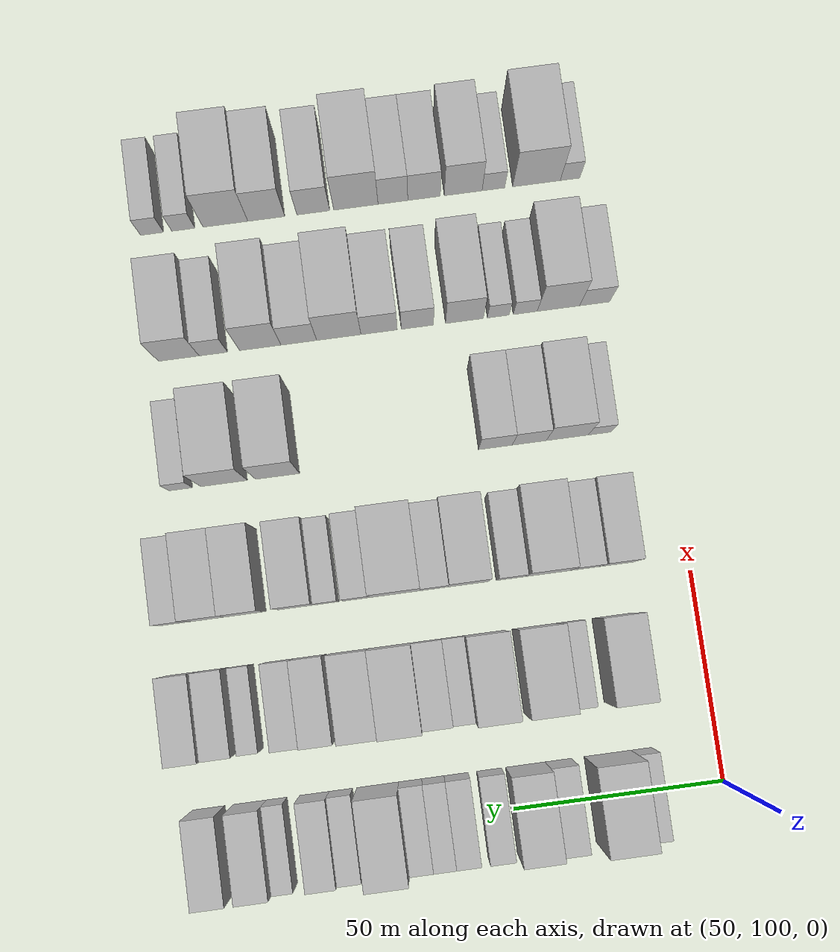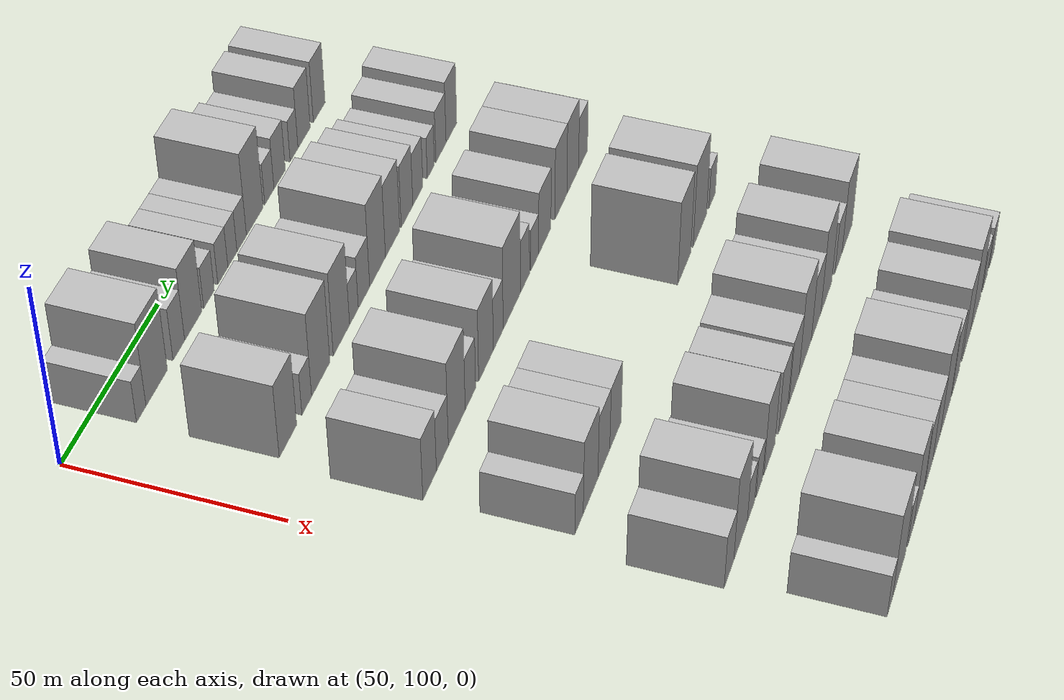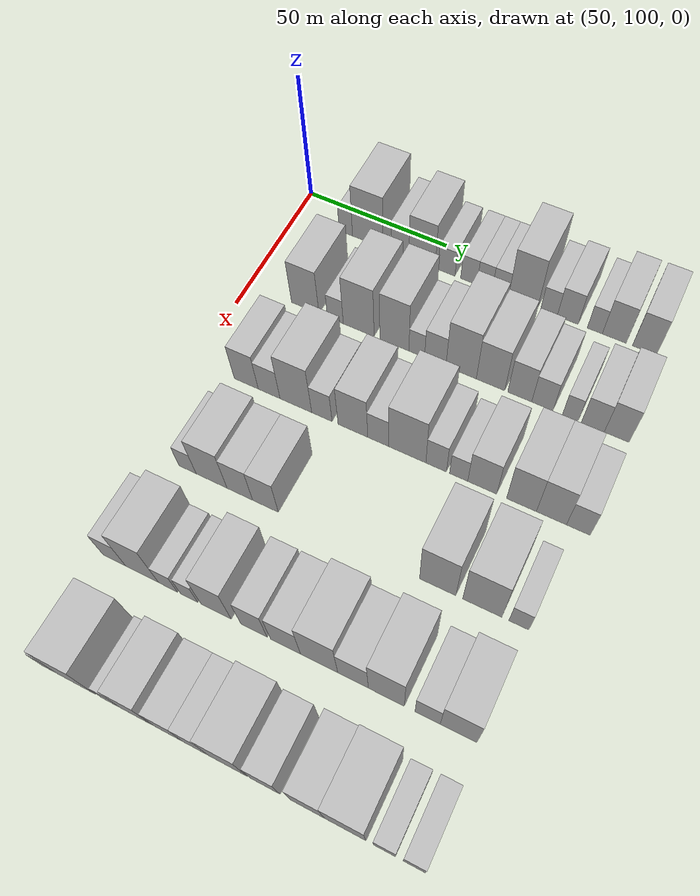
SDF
<sdf version="1.6">
 <world name="default">
  <model name="building_75">
   <static>1</static>
   <pose>50.0000 118.1994 0 0.000000 0.000000 0.000000</pose>
   <link name="link">
    <pose>0 0 6.00 0 0 0</pose>
    <collision name="collision"><geometry><box><size>20.0000 4.9392 12.0000</size></box></geometry></collision>
    <visual name="visual">
     <cast_shadows>0</cast_shadows>
     <geometry><box><size>20.0000 4.9392 12.0000</size></box></geometry>
     <material>
      <script>
       <uri>model://HANNAS_wall/materials/scripts</uri>
       <uri>model://HANNAS_wall/materials/textures</uri>
       <name>vrc/HANNAS_wall</name>
      </script>
     </material>
    </visual>
   </link>
  </model>
  <model name="building_76">
   <static>1</static>
   <pose>50.0000 126.2864 0 0.000000 0.000000 0.000000</pose>
   <link name="link">
    <pose>0 0 12.00 0 0 0</pose>
    <collision name="collision"><geometry><box><size>20.0000 11.2349 24.0000</size></box></geometry></collision>
    <visual name="visual">
     <cast_shadows>0</cast_shadows>
     <geometry><box><size>20.0000 11.2349 24.0000</size></box></geometry>
     <material>
      <script>
       <uri>model://HANNAS_wall/materials/scripts</uri>
       <uri>model://HANNAS_wall/materials/textures</uri>
       <name>vrc/HANNAS_wall</name>
      </script>
     </material>
    </visual>
   </link>
  </model>
  <model name="building_77">
   <static>1</static>
   <pose>50.0000 138.0626 0 0.000000 0.000000 0.000000</pose>
   <link name="link">
    <pose>0 0 7.50 0 0 0</pose>
    <collision name="collision"><geometry><box><size>20.0000 6.3176 15.0000</size></box></geometry></collision>
    <visual name="visual">
     <cast_shadows>0</cast_shadows>
     <geometry><box><size>20.0000 6.3176 15.0000</size></box></geometry>
     <material>
      <script>
       <uri>model://HANNAS_wall/materials/scripts</uri>
       <uri>model://HANNAS_wall/materials/textures</uri>
       <name>vrc/HANNAS_wall</name>
      </script>
     </material>
    </visual>
   </link>
  </model>
  <model name="building_78">
   <static>1</static>
   <pose>50.0000 145.9544 0 0.000000 0.000000 0.000000</pose>
   <link name="link">
    <pose>0 0 10.50 0 0 0</pose>
    <collision name="collision"><geometry><box><size>20.0000 9.4658 21.0000</size></box></geometry></collision>
    <visual name="visual">
     <cast_shadows>0</cast_shadows>
     <geometry><box><size>20.0000 9.4658 21.0000</size></box></geometry>
     <material>
      <script>
       <uri>model://HANNAS_wall/materials/scripts</uri>
       <uri>model://HANNAS_wall/materials/textures</uri>
       <name>vrc/HANNAS_wall</name>
      </script>
     </material>
    </visual>
   </link>
  </model>
  <model name="building_79">
   <static>1</static>
   <pose>50.0000 154.6687 0 0.000000 0.000000 0.000000</pose>
   <link name="link">
    <pose>0 0 6.00 0 0 0</pose>
    <collision name="collision"><geometry><box><size>20.0000 5.9629 12.0000</size></box></geometry></collision>
    <visual name="visual">
     <cast_shadows>0</cast_shadows>
     <geometry><box><size>20.0000 5.9629 12.0000</size></box></geometry>
     <material>
      <script>
       <uri>model://HANNAS_wall/materials/scripts</uri>
       <uri>model://HANNAS_wall/materials/textures</uri>
       <name>vrc/HANNAS_wall</name>
      </script>
     </material>
    </visual>
   </link>
  </model>
  <model name="building_80">
   <static>1</static>
   <pose>50.0000 162.5306 0 0.000000 0.000000 0.000000</pose>
   <link name="link">
    <pose>0 0 6.00 0 0 0</pose>
    <collision name="collision"><geometry><box><size>20.0000 5.7607 12.0000</size></box></geometry></collision>
    <visual name="visual">
     <cast_shadows>0</cast_shadows>
     <geometry><box><size>20.0000 5.7607 12.0000</size></box></geometry>
     <material>
      <script>
       <uri>model://HANNAS_wall/materials/scripts</uri>
       <uri>model://HANNAS_wall/materials/textures</uri>
       <name>vrc/HANNAS_wall</name>
      </script>
     </material>
    </visual>
   </link>
  </model>
  <model name="building_81">
   <static>1</static>
   <pose>50.0000 168.0531 0 0.000000 0.000000 0.000000</pose>
   <link name="link">
    <pose>0 0 6.00 0 0 0</pose>
    <collision name="collision"><geometry><box><size>20.0000 5.2844 12.0000</size></box></geometry></collision>
    <visual name="visual">
     <cast_shadows>0</cast_shadows>
     <geometry><box><size>20.0000 5.2844 12.0000</size></box></geometry>
     <material>
      <script>
       <uri>model://HANNAS_wall/materials/scripts</uri>
       <uri>model://HANNAS_wall/materials/textures</uri>
       <name>vrc/HANNAS_wall</name>
      </script>
     </material>
    </visual>
   </link>
  </model>
  <model name="building_82">
   <static>1</static>
   <pose>50.0000 173.4659 0 0.000000 0.000000 0.000000</pose>
   <link name="link">
    <pose>0 0 6.00 0 0 0</pose>
    <collision name="collision"><geometry><box><size>20.0000 5.5410 12.0000</size></box></geometry></collision>
    <visual name="visual">
     <cast_shadows>0</cast_shadows>
     <geometry><box><size>20.0000 5.5410 12.0000</size></box></geometry>
     <material>
      <script>
       <uri>model://HANNAS_wall/materials/scripts</uri>
       <uri>model://HANNAS_wall/materials/textures</uri>
       <name>vrc/HANNAS_wall</name>
      </script>
     </material>
    </visual>
   </link>
  </model>
  <model name="building_83">
   <static>1</static>
   <pose>50.0000 181.2107 0 0.000000 0.000000 0.000000</pose>
   <link name="link">
    <pose>0 0 12.00 0 0 0</pose>
    <collision name="collision"><geometry><box><size>20.0000 9.9487 24.0000</size></box></geometry></collision>
    <visual name="visual">
     <cast_shadows>0</cast_shadows>
     <geometry><box><size>20.0000 9.9487 24.0000</size></box></geometry>
     <material>
      <script>
       <uri>model://HANNAS_wall/materials/scripts</uri>
       <uri>model://HANNAS_wall/materials/textures</uri>
       <name>vrc/HANNAS_wall</name>
      </script>
     </material>
    </visual>
   </link>
  </model>
  <model name="building_84">
   <static>1</static>
   <pose>50.0000 189.9863 0 0.000000 0.000000 0.000000</pose>
   <link name="link">
    <pose>0 0 6.00 0 0 0</pose>
    <collision name="collision"><geometry><box><size>20.0000 5.6026 12.0000</size></box></geometry></collision>
    <visual name="visual">
     <cast_shadows>0</cast_shadows>
     <geometry><box><size>20.0000 5.6026 12.0000</size></box></geometry>
     <material>
      <script>
       <uri>model://HANNAS_wall/materials/scripts</uri>
       <uri>model://HANNAS_wall/materials/textures</uri>
       <name>vrc/HANNAS_wall</name>
      </script>
     </material>
    </visual>
   </link>
  </model>
  <model name="building_85">
   <static>1</static>
   <pose>50.0000 196.2868 0 0.000000 0.000000 0.000000</pose>
   <link name="link">
    <pose>0 0 7.50 0 0 0</pose>
    <collision name="collision"><geometry><box><size>20.0000 6.9983 15.0000</size></box></geometry></collision>
    <visual name="visual">
     <cast_shadows>0</cast_shadows>
     <geometry><box><size>20.0000 6.9983 15.0000</size></box></geometry>
     <material>
      <script>
       <uri>model://HANNAS_wall/materials/scripts</uri>
       <uri>model://HANNAS_wall/materials/textures</uri>
       <name>vrc/HANNAS_wall</name>
      </script>
     </material>
    </visual>
   </link>
  </model>
  <model name="building_86">
   <static>1</static>
   <pose>50.0000 205.2603 0 0.000000 0.000000 0.000000</pose>
   <link name="link">
    <pose>0 0 6.00 0 0 0</pose>
    <collision name="collision"><geometry><box><size>20.0000 4.9488 12.0000</size></box></geometry></collision>
    <visual name="visual">
     <cast_shadows>0</cast_shadows>
     <geometry><box><size>20.0000 4.9488 12.0000</size></box></geometry>
     <material>
      <script>
       <uri>model://HANNAS_wall/materials/scripts</uri>
       <uri>model://HANNAS_wall/materials/textures</uri>
       <name>vrc/HANNAS_wall</name>
      </script>
     </material>
    </visual>
   </link>
  </model>
  <model name="building_87">
   <static>1</static>
   <pose>50.0000 211.6419 0 0.000000 0.000000 0.000000</pose>
   <link name="link">
    <pose>0 0 9.00 0 0 0</pose>
    <collision name="collision"><geometry><box><size>20.0000 7.8144 18.0000</size></box></geometry></collision>
    <visual name="visual">
     <cast_shadows>0</cast_shadows>
     <geometry><box><size>20.0000 7.8144 18.0000</size></box></geometry>
     <material>
      <script>
       <uri>model://HANNAS_wall/materials/scripts</uri>
       <uri>model://HANNAS_wall/materials/textures</uri>
       <name>vrc/HANNAS_wall</name>
      </script>
     </material>
    </visual>
   </link>
  </model>
  <model name="building_88">
   <static>1</static>
   <pose>50.0000 221.3936 0 0.000000 0.000000 0.000000</pose>
   <link name="link">
    <pose>0 0 9.00 0 0 0</pose>
    <collision name="collision"><geometry><box><size>20.0000 7.6889 18.0000</size></box></geometry></collision>
    <visual name="visual">
     <cast_shadows>0</cast_shadows>
     <geometry><box><size>20.0000 7.6889 18.0000</size></box></geometry>
     <material>
      <script>
       <uri>model://HANNAS_wall/materials/scripts</uri>
       <uri>model://HANNAS_wall/materials/textures</uri>
       <name>vrc/HANNAS_wall</name>
      </script>
     </material>
    </visual>
   </link>
  </model>
  <model name="building_193">
   <static>1</static>
   <pose>82.0000 120.3832 0 0.000000 0.000000 0.000000</pose>
   <link name="link">
    <pose>0 0 10.50 0 0 0</pose>
    <collision name="collision"><geometry><box><size>20.0000 9.7965 21.0000</size></box></geometry></collision>
    <visual name="visual">
     <cast_shadows>0</cast_shadows>
     <geometry><box><size>20.0000 9.7965 21.0000</size></box></geometry>
     <material>
      <script>
       <uri>model://HANNAS_wall/materials/scripts</uri>
       <uri>model://HANNAS_wall/materials/textures</uri>
       <name>vrc/HANNAS_wall</name>
      </script>
     </material>
    </visual>
   </link>
  </model>
  <model name="building_194">
   <static>1</static>
   <pose>82.0000 131.0732 0 0.000000 0.000000 0.000000</pose>
   <link name="link">
    <pose>0 0 6.00 0 0 0</pose>
    <collision name="collision"><geometry><box><size>20.0000 5.5835 12.0000</size></box></geometry></collision>
    <visual name="visual">
     <cast_shadows>0</cast_shadows>
     <geometry><box><size>20.0000 5.5835 12.0000</size></box></geometry>
     <material>
      <script>
       <uri>model://HANNAS_wall/materials/scripts</uri>
       <uri>model://HANNAS_wall/materials/textures</uri>
       <name>vrc/HANNAS_wall</name>
      </script>
     </material>
    </visual>
   </link>
  </model>
  <model name="building_195">
   <static>1</static>
   <pose>82.0000 139.2418 0 0.000000 0.000000 0.000000</pose>
   <link name="link">
    <pose>0 0 12.00 0 0 0</pose>
    <collision name="collision"><geometry><box><size>20.0000 10.7538 24.0000</size></box></geometry></collision>
    <visual name="visual">
     <cast_shadows>0</cast_shadows>
     <geometry><box><size>20.0000 10.7538 24.0000</size></box></geometry>
     <material>
      <script>
       <uri>model://HANNAS_wall/materials/scripts</uri>
       <uri>model://HANNAS_wall/materials/textures</uri>
       <name>vrc/HANNAS_wall</name>
      </script>
     </material>
    </visual>
   </link>
  </model>
  <model name="building_196">
   <static>1</static>
   <pose>82.0000 151.5748 0 0.000000 0.000000 0.000000</pose>
   <link name="link">
    <pose>0 0 12.00 0 0 0</pose>
    <collision name="collision"><geometry><box><size>20.0000 9.9122 24.0000</size></box></geometry></collision>
    <visual name="visual">
     <cast_shadows>0</cast_shadows>
     <geometry><box><size>20.0000 9.9122 24.0000</size></box></geometry>
     <material>
      <script>
       <uri>model://HANNAS_wall/materials/scripts</uri>
       <uri>model://HANNAS_wall/materials/textures</uri>
       <name>vrc/HANNAS_wall</name>
      </script>
     </material>
    </visual>
   </link>
  </model>
  <model name="building_197">
   <static>1</static>
   <pose>82.0000 159.2060 0 0.000000 0.000000 0.000000</pose>
   <link name="link">
    <pose>0 0 6.00 0 0 0</pose>
    <collision name="collision"><geometry><box><size>20.0000 5.3502 12.0000</size></box></geometry></collision>
    <visual name="visual">
     <cast_shadows>0</cast_shadows>
     <geometry><box><size>20.0000 5.3502 12.0000</size></box></geometry>
     <material>
      <script>
       <uri>model://HANNAS_wall/materials/scripts</uri>
       <uri>model://HANNAS_wall/materials/textures</uri>
       <name>vrc/HANNAS_wall</name>
      </script>
     </material>
    </visual>
   </link>
  </model>
  <model name="building_198">
   <static>1</static>
   <pose>82.0000 165.4545 0 0.000000 0.000000 0.000000</pose>
   <link name="link">
    <pose>0 0 7.50 0 0 0</pose>
    <collision name="collision"><geometry><box><size>20.0000 7.1468 15.0000</size></box></geometry></collision>
    <visual name="visual">
     <cast_shadows>0</cast_shadows>
     <geometry><box><size>20.0000 7.1468 15.0000</size></box></geometry>
     <material>
      <script>
       <uri>model://HANNAS_wall/materials/scripts</uri>
       <uri>model://HANNAS_wall/materials/textures</uri>
       <name>vrc/HANNAS_wall</name>
      </script>
     </material>
    </visual>
   </link>
  </model>
  <model name="building_199">
   <static>1</static>
   <pose>82.0000 174.0590 0 0.000000 0.000000 0.000000</pose>
   <link name="link">
    <pose>0 0 12.00 0 0 0</pose>
    <collision name="collision"><geometry><box><size>20.0000 10.0622 24.0000</size></box></geometry></collision>
    <visual name="visual">
     <cast_shadows>0</cast_shadows>
     <geometry><box><size>20.0000 10.0622 24.0000</size></box></geometry>
     <material>
      <script>
       <uri>model://HANNAS_wall/materials/scripts</uri>
       <uri>model://HANNAS_wall/materials/textures</uri>
       <name>vrc/HANNAS_wall</name>
      </script>
     </material>
    </visual>
   </link>
  </model>
  <model name="building_200">
   <static>1</static>
   <pose>82.0000 183.7360 0 0.000000 0.000000 0.000000</pose>
   <link name="link">
    <pose>0 0 10.50 0 0 0</pose>
    <collision name="collision"><geometry><box><size>20.0000 9.2918 21.0000</size></box></geometry></collision>
    <visual name="visual">
     <cast_shadows>0</cast_shadows>
     <geometry><box><size>20.0000 9.2918 21.0000</size></box></geometry>
     <material>
      <script>
       <uri>model://HANNAS_wall/materials/scripts</uri>
       <uri>model://HANNAS_wall/materials/textures</uri>
       <name>vrc/HANNAS_wall</name>
      </script>
     </material>
    </visual>
   </link>
  </model>
  <model name="building_201">
   <static>1</static>
   <pose>82.0000 193.2469 0 0.000000 0.000000 0.000000</pose>
   <link name="link">
    <pose>0 0 9.00 0 0 0</pose>
    <collision name="collision"><geometry><box><size>20.0000 7.7300 18.0000</size></box></geometry></collision>
    <visual name="visual">
     <cast_shadows>0</cast_shadows>
     <geometry><box><size>20.0000 7.7300 18.0000</size></box></geometry>
     <material>
      <script>
       <uri>model://HANNAS_wall/materials/scripts</uri>
       <uri>model://HANNAS_wall/materials/textures</uri>
       <name>vrc/HANNAS_wall</name>
      </script>
     </material>
    </visual>
   </link>
  </model>
  <model name="building_202">
   <static>1</static>
   <pose>82.0000 200.5102 0 0.000000 0.000000 0.000000</pose>
   <link name="link">
    <pose>0 0 7.50 0 0 0</pose>
    <collision name="collision"><geometry><box><size>20.0000 6.7966 15.0000</size></box></geometry></collision>
    <visual name="visual">
     <cast_shadows>0</cast_shadows>
     <geometry><box><size>20.0000 6.7966 15.0000</size></box></geometry>
     <material>
      <script>
       <uri>model://HANNAS_wall/materials/scripts</uri>
       <uri>model://HANNAS_wall/materials/textures</uri>
       <name>vrc/HANNAS_wall</name>
      </script>
     </material>
    </visual>
   </link>
  </model>
  <model name="building_203">
   <static>1</static>
   <pose>82.0000 209.3788 0 0.000000 0.000000 0.000000</pose>
   <link name="link">
    <pose>0 0 6.00 0 0 0</pose>
    <collision name="collision"><geometry><box><size>20.0000 4.9405 12.0000</size></box></geometry></collision>
    <visual name="visual">
     <cast_shadows>0</cast_shadows>
     <geometry><box><size>20.0000 4.9405 12.0000</size></box></geometry>
     <material>
      <script>
       <uri>model://HANNAS_wall/materials/scripts</uri>
       <uri>model://HANNAS_wall/materials/textures</uri>
       <name>vrc/HANNAS_wall</name>
      </script>
     </material>
    </visual>
   </link>
  </model>
  <model name="building_204">
   <static>1</static>
   <pose>82.0000 216.4157 0 0.000000 0.000000 0.000000</pose>
   <link name="link">
    <pose>0 0 7.50 0 0 0</pose>
    <collision name="collision"><geometry><box><size>20.0000 7.1333 15.0000</size></box></geometry></collision>
    <visual name="visual">
     <cast_shadows>0</cast_shadows>
     <geometry><box><size>20.0000 7.1333 15.0000</size></box></geometry>
     <material>
      <script>
       <uri>model://HANNAS_wall/materials/scripts</uri>
       <uri>model://HANNAS_wall/materials/textures</uri>
       <name>vrc/HANNAS_wall</name>
      </script>
     </material>
    </visual>
   </link>
  </model>
  <model name="building_205">
   <static>1</static>
   <pose>82.0000 223.7957 0 0.000000 0.000000 0.000000</pose>
   <link name="link">
    <pose>0 0 9.00 0 0 0</pose>
    <collision name="collision"><geometry><box><size>20.0000 7.6267 18.0000</size></box></geometry></collision>
    <visual name="visual">
     <cast_shadows>0</cast_shadows>
     <geometry><box><size>20.0000 7.6267 18.0000</size></box></geometry>
     <material>
      <script>
       <uri>model://HANNAS_wall/materials/scripts</uri>
       <uri>model://HANNAS_wall/materials/textures</uri>
       <name>vrc/HANNAS_wall</name>
      </script>
     </material>
    </visual>
   </link>
  </model>
  <model name="building_310">
   <static>1</static>
   <pose>114.0000 117.5927 0 0.000000 0.000000 0.000000</pose>
   <link name="link">
    <pose>0 0 9.00 0 0 0</pose>
    <collision name="collision"><geometry><box><size>20.0000 8.3135 18.0000</size></box></geometry></collision>
    <visual name="visual">
     <cast_shadows>0</cast_shadows>
     <geometry><box><size>20.0000 8.3135 18.0000</size></box></geometry>
     <material>
      <script>
       <uri>model://HANNAS_wall/materials/scripts</uri>
       <uri>model://HANNAS_wall/materials/textures</uri>
       <name>vrc/HANNAS_wall</name>
      </script>
     </material>
    </visual>
   </link>
  </model>
  <model name="building_311">
   <static>1</static>
   <pose>114.0000 125.4816 0 0.000000 0.000000 0.000000</pose>
   <link name="link">
    <pose>0 0 7.50 0 0 0</pose>
    <collision name="collision"><geometry><box><size>20.0000 7.4643 15.0000</size></box></geometry></collision>
    <visual name="visual">
     <cast_shadows>0</cast_shadows>
     <geometry><box><size>20.0000 7.4643 15.0000</size></box></geometry>
     <material>
      <script>
       <uri>model://HANNAS_wall/materials/scripts</uri>
       <uri>model://HANNAS_wall/materials/textures</uri>
       <name>vrc/HANNAS_wall</name>
      </script>
     </material>
    </visual>
   </link>
  </model>
  <model name="building_312">
   <static>1</static>
   <pose>114.0000 134.5953 0 0.000000 0.000000 0.000000</pose>
   <link name="link">
    <pose>0 0 12.00 0 0 0</pose>
    <collision name="collision"><geometry><box><size>20.0000 10.7631 24.0000</size></box></geometry></collision>
    <visual name="visual">
     <cast_shadows>0</cast_shadows>
     <geometry><box><size>20.0000 10.7631 24.0000</size></box></geometry>
     <material>
      <script>
       <uri>model://HANNAS_wall/materials/scripts</uri>
       <uri>model://HANNAS_wall/materials/textures</uri>
       <name>vrc/HANNAS_wall</name>
      </script>
     </material>
    </visual>
   </link>
  </model>
  <model name="building_313">
   <static>1</static>
   <pose>114.0000 143.3725 0 0.000000 0.000000 0.000000</pose>
   <link name="link">
    <pose>0 0 7.50 0 0 0</pose>
    <collision name="collision"><geometry><box><size>20.0000 6.7913 15.0000</size></box></geometry></collision>
    <visual name="visual">
     <cast_shadows>0</cast_shadows>
     <geometry><box><size>20.0000 6.7913 15.0000</size></box></geometry>
     <material>
      <script>
       <uri>model://HANNAS_wall/materials/scripts</uri>
       <uri>model://HANNAS_wall/materials/textures</uri>
       <name>vrc/HANNAS_wall</name>
      </script>
     </material>
    </visual>
   </link>
  </model>
  <model name="building_314">
   <static>1</static>
   <pose>114.0000 153.6527 0 0.000000 0.000000 0.000000</pose>
   <link name="link">
    <pose>0 0 10.50 0 0 0</pose>
    <collision name="collision"><geometry><box><size>20.0000 9.7691 21.0000</size></box></geometry></collision>
    <visual name="visual">
     <cast_shadows>0</cast_shadows>
     <geometry><box><size>20.0000 9.7691 21.0000</size></box></geometry>
     <material>
      <script>
       <uri>model://HANNAS_wall/materials/scripts</uri>
       <uri>model://HANNAS_wall/materials/textures</uri>
       <name>vrc/HANNAS_wall</name>
      </script>
     </material>
    </visual>
   </link>
  </model>
  <model name="building_315">
   <static>1</static>
   <pose>114.0000 161.8983 0 0.000000 0.000000 0.000000</pose>
   <link name="link">
    <pose>0 0 7.50 0 0 0</pose>
    <collision name="collision"><geometry><box><size>20.0000 6.7222 15.0000</size></box></geometry></collision>
    <visual name="visual">
     <cast_shadows>0</cast_shadows>
     <geometry><box><size>20.0000 6.7222 15.0000</size></box></geometry>
     <material>
      <script>
       <uri>model://HANNAS_wall/materials/scripts</uri>
       <uri>model://HANNAS_wall/materials/textures</uri>
       <name>vrc/HANNAS_wall</name>
      </script>
     </material>
    </visual>
   </link>
  </model>
  <model name="building_316">
   <static>1</static>
   <pose>114.0000 171.2581 0 0.000000 0.000000 0.000000</pose>
   <link name="link">
    <pose>0 0 12.00 0 0 0</pose>
    <collision name="collision"><geometry><box><size>20.0000 11.9974 24.0000</size></box></geometry></collision>
    <visual name="visual">
     <cast_shadows>0</cast_shadows>
     <geometry><box><size>20.0000 11.9974 24.0000</size></box></geometry>
     <material>
      <script>
       <uri>model://HANNAS_wall/materials/scripts</uri>
       <uri>model://HANNAS_wall/materials/textures</uri>
       <name>vrc/HANNAS_wall</name>
      </script>
     </material>
    </visual>
   </link>
  </model>
  <model name="building_317">
   <static>1</static>
   <pose>114.0000 180.5034 0 0.000000 0.000000 0.000000</pose>
   <link name="link">
    <pose>0 0 7.50 0 0 0</pose>
    <collision name="collision"><geometry><box><size>20.0000 6.4932 15.0000</size></box></geometry></collision>
    <visual name="visual">
     <cast_shadows>0</cast_shadows>
     <geometry><box><size>20.0000 6.4932 15.0000</size></box></geometry>
     <material>
      <script>
       <uri>model://HANNAS_wall/materials/scripts</uri>
       <uri>model://HANNAS_wall/materials/textures</uri>
       <name>vrc/HANNAS_wall</name>
      </script>
     </material>
    </visual>
   </link>
  </model>
  <model name="building_318">
   <static>1</static>
   <pose>114.0000 187.5904 0 0.000000 0.000000 0.000000</pose>
   <link name="link">
    <pose>0 0 6.00 0 0 0</pose>
    <collision name="collision"><geometry><box><size>20.0000 5.6807 12.0000</size></box></geometry></collision>
    <visual name="visual">
     <cast_shadows>0</cast_shadows>
     <geometry><box><size>20.0000 5.6807 12.0000</size></box></geometry>
     <material>
      <script>
       <uri>model://HANNAS_wall/materials/scripts</uri>
       <uri>model://HANNAS_wall/materials/textures</uri>
       <name>vrc/HANNAS_wall</name>
      </script>
     </material>
    </visual>
   </link>
  </model>
  <model name="building_319">
   <static>1</static>
   <pose>114.0000 194.9164 0 0.000000 0.000000 0.000000</pose>
   <link name="link">
    <pose>0 0 9.00 0 0 0</pose>
    <collision name="collision"><geometry><box><size>20.0000 8.9715 18.0000</size></box></geometry></collision>
    <visual name="visual">
     <cast_shadows>0</cast_shadows>
     <geometry><box><size>20.0000 8.9715 18.0000</size></box></geometry>
     <material>
      <script>
       <uri>model://HANNAS_wall/materials/scripts</uri>
       <uri>model://HANNAS_wall/materials/textures</uri>
       <name>vrc/HANNAS_wall</name>
      </script>
     </material>
    </visual>
   </link>
  </model>
  <model name="building_320">
   <static>1</static>
   <pose>114.0000 206.9314 0 0.000000 0.000000 0.000000</pose>
   <link name="link">
    <pose>0 0 10.50 0 0 0</pose>
    <collision name="collision"><geometry><box><size>20.0000 9.0585 21.0000</size></box></geometry></collision>
    <visual name="visual">
     <cast_shadows>0</cast_shadows>
     <geometry><box><size>20.0000 9.0585 21.0000</size></box></geometry>
     <material>
      <script>
       <uri>model://HANNAS_wall/materials/scripts</uri>
       <uri>model://HANNAS_wall/materials/textures</uri>
       <name>vrc/HANNAS_wall</name>
      </script>
     </material>
    </visual>
   </link>
  </model>
  <model name="building_321">
   <static>1</static>
   <pose>114.0000 215.9513 0 0.000000 0.000000 0.000000</pose>
   <link name="link">
    <pose>0 0 10.50 0 0 0</pose>
    <collision name="collision"><geometry><box><size>20.0000 8.9814 21.0000</size></box></geometry></collision>
    <visual name="visual">
     <cast_shadows>0</cast_shadows>
     <geometry><box><size>20.0000 8.9814 21.0000</size></box></geometry>
     <material>
      <script>
       <uri>model://HANNAS_wall/materials/scripts</uri>
       <uri>model://HANNAS_wall/materials/textures</uri>
       <name>vrc/HANNAS_wall</name>
      </script>
     </material>
    </visual>
   </link>
  </model>
  <model name="building_322">
   <static>1</static>
   <pose>114.0000 223.9502 0 0.000000 0.000000 0.000000</pose>
   <link name="link">
    <pose>0 0 7.50 0 0 0</pose>
    <collision name="collision"><geometry><box><size>20.0000 7.0164 15.0000</size></box></geometry></collision>
    <visual name="visual">
     <cast_shadows>0</cast_shadows>
     <geometry><box><size>20.0000 7.0164 15.0000</size></box></geometry>
     <material>
      <script>
       <uri>model://HANNAS_wall/materials/scripts</uri>
       <uri>model://HANNAS_wall/materials/textures</uri>
       <name>vrc/HANNAS_wall</name>
      </script>
     </material>
    </visual>
   </link>
  </model>
  <model name="building_433">
   <static>1</static>
   <pose>146.0000 116.8407 0 0.000000 0.000000 0.000000</pose>
   <link name="link">
    <pose>0 0 6.00 0 0 0</pose>
    <collision name="collision"><geometry><box><size>20.0000 5.7172 12.0000</size></box></geometry></collision>
    <visual name="visual">
     <cast_shadows>0</cast_shadows>
     <geometry><box><size>20.0000 5.7172 12.0000</size></box></geometry>
     <material>
      <script>
       <uri>model://HANNAS_wall/materials/scripts</uri>
       <uri>model://HANNAS_wall/materials/textures</uri>
       <name>vrc/HANNAS_wall</name>
      </script>
     </material>
    </visual>
   </link>
  </model>
  <model name="building_434">
   <static>1</static>
   <pose>146.0000 124.8264 0 0.000000 0.000000 0.000000</pose>
   <link name="link">
    <pose>0 0 10.50 0 0 0</pose>
    <collision name="collision"><geometry><box><size>20.0000 10.2542 21.0000</size></box></geometry></collision>
    <visual name="visual">
     <cast_shadows>0</cast_shadows>
     <geometry><box><size>20.0000 10.2542 21.0000</size></box></geometry>
     <material>
      <script>
       <uri>model://HANNAS_wall/materials/scripts</uri>
       <uri>model://HANNAS_wall/materials/textures</uri>
       <name>vrc/HANNAS_wall</name>
      </script>
     </material>
    </visual>
   </link>
  </model>
  <model name="building_435">
   <static>1</static>
   <pose>146.0000 134.1352 0 0.000000 0.000000 0.000000</pose>
   <link name="link">
    <pose>0 0 9.00 0 0 0</pose>
    <collision name="collision"><geometry><box><size>20.0000 8.3634 18.0000</size></box></geometry></collision>
    <visual name="visual">
     <cast_shadows>0</cast_shadows>
     <geometry><box><size>20.0000 8.3634 18.0000</size></box></geometry>
     <material>
      <script>
       <uri>model://HANNAS_wall/materials/scripts</uri>
       <uri>model://HANNAS_wall/materials/textures</uri>
       <name>vrc/HANNAS_wall</name>
      </script>
     </material>
    </visual>
   </link>
  </model>
  <model name="building_436">
   <static>1</static>
   <pose>146.0000 142.4606 0 0.000000 0.000000 0.000000</pose>
   <link name="link">
    <pose>0 0 9.00 0 0 0</pose>
    <collision name="collision"><geometry><box><size>20.0000 8.2874 18.0000</size></box></geometry></collision>
    <visual name="visual">
     <cast_shadows>0</cast_shadows>
     <geometry><box><size>20.0000 8.2874 18.0000</size></box></geometry>
     <material>
      <script>
       <uri>model://HANNAS_wall/materials/scripts</uri>
       <uri>model://HANNAS_wall/materials/textures</uri>
       <name>vrc/HANNAS_wall</name>
      </script>
     </material>
    </visual>
   </link>
  </model>
  <model name="building_437">
   <static>1</static>
   <pose>146.0000 195.7177 0 0.000000 0.000000 0.000000</pose>
   <link name="link">
    <pose>0 0 12.00 0 0 0</pose>
    <collision name="collision"><geometry><box><size>20.0000 10.7423 24.0000</size></box></geometry></collision>
    <visual name="visual">
     <cast_shadows>0</cast_shadows>
     <geometry><box><size>20.0000 10.7423 24.0000</size></box></geometry>
     <material>
      <script>
       <uri>model://HANNAS_wall/materials/scripts</uri>
       <uri>model://HANNAS_wall/materials/textures</uri>
       <name>vrc/HANNAS_wall</name>
      </script>
     </material>
    </visual>
   </link>
  </model>
  <model name="building_438">
   <static>1</static>
   <pose>146.0000 208.7790 0 0.000000 0.000000 0.000000</pose>
   <link name="link">
    <pose>0 0 12.00 0 0 0</pose>
    <collision name="collision"><geometry><box><size>20.0000 11.3803 24.0000</size></box></geometry></collision>
    <visual name="visual">
     <cast_shadows>0</cast_shadows>
     <geometry><box><size>20.0000 11.3803 24.0000</size></box></geometry>
     <material>
      <script>
       <uri>model://HANNAS_wall/materials/scripts</uri>
       <uri>model://HANNAS_wall/materials/textures</uri>
       <name>vrc/HANNAS_wall</name>
      </script>
     </material>
    </visual>
   </link>
  </model>
  <model name="building_439">
   <static>1</static>
   <pose>146.0000 219.3174 0 0.000000 0.000000 0.000000</pose>
   <link name="link">
    <pose>0 0 6.00 0 0 0</pose>
    <collision name="collision"><geometry><box><size>20.0000 5.6964 12.0000</size></box></geometry></collision>
    <visual name="visual">
     <cast_shadows>0</cast_shadows>
     <geometry><box><size>20.0000 5.6964 12.0000</size></box></geometry>
     <material>
      <script>
       <uri>model://HANNAS_wall/materials/scripts</uri>
       <uri>model://HANNAS_wall/materials/textures</uri>
       <name>vrc/HANNAS_wall</name>
      </script>
     </material>
    </visual>
   </link>
  </model>
  <model name="building_542">
   <static>1</static>
   <pose>178.0000 113.3450 0 0.000000 0.000000 0.000000</pose>
   <link name="link">
    <pose>0 0 7.50 0 0 0</pose>
    <collision name="collision"><geometry><box><size>20.0000 7.4549 15.0000</size></box></geometry></collision>
    <visual name="visual">
     <cast_shadows>0</cast_shadows>
     <geometry><box><size>20.0000 7.4549 15.0000</size></box></geometry>
     <material>
      <script>
       <uri>model://HANNAS_wall/materials/scripts</uri>
       <uri>model://HANNAS_wall/materials/textures</uri>
       <name>vrc/HANNAS_wall</name>
      </script>
     </material>
    </visual>
   </link>
  </model>
  <model name="building_543">
   <static>1</static>
   <pose>178.0000 122.3368 0 0.000000 0.000000 0.000000</pose>
   <link name="link">
    <pose>0 0 12.00 0 0 0</pose>
    <collision name="collision"><geometry><box><size>20.0000 10.5288 24.0000</size></box></geometry></collision>
    <visual name="visual">
     <cast_shadows>0</cast_shadows>
     <geometry><box><size>20.0000 10.5288 24.0000</size></box></geometry>
     <material>
      <script>
       <uri>model://HANNAS_wall/materials/scripts</uri>
       <uri>model://HANNAS_wall/materials/textures</uri>
       <name>vrc/HANNAS_wall</name>
      </script>
     </material>
    </visual>
   </link>
  </model>
  <model name="building_544">
   <static>1</static>
   <pose>178.0000 130.5788 0 0.000000 0.000000 0.000000</pose>
   <link name="link">
    <pose>0 0 6.00 0 0 0</pose>
    <collision name="collision"><geometry><box><size>20.0000 5.9551 12.0000</size></box></geometry></collision>
    <visual name="visual">
     <cast_shadows>0</cast_shadows>
     <geometry><box><size>20.0000 5.9551 12.0000</size></box></geometry>
     <material>
      <script>
       <uri>model://HANNAS_wall/materials/scripts</uri>
       <uri>model://HANNAS_wall/materials/textures</uri>
       <name>vrc/HANNAS_wall</name>
      </script>
     </material>
    </visual>
   </link>
  </model>
  <model name="building_545">
   <static>1</static>
   <pose>178.0000 137.2599 0 0.000000 0.000000 0.000000</pose>
   <link name="link">
    <pose>0 0 6.00 0 0 0</pose>
    <collision name="collision"><geometry><box><size>20.0000 5.4071 12.0000</size></box></geometry></collision>
    <visual name="visual">
     <cast_shadows>0</cast_shadows>
     <geometry><box><size>20.0000 5.4071 12.0000</size></box></geometry>
     <material>
      <script>
       <uri>model://HANNAS_wall/materials/scripts</uri>
       <uri>model://HANNAS_wall/materials/textures</uri>
       <name>vrc/HANNAS_wall</name>
      </script>
     </material>
    </visual>
   </link>
  </model>
  <model name="building_546">
   <static>1</static>
   <pose>178.0000 145.6394 0 0.000000 0.000000 0.000000</pose>
   <link name="link">
    <pose>0 0 10.50 0 0 0</pose>
    <collision name="collision"><geometry><box><size>20.0000 9.3518 21.0000</size></box></geometry></collision>
    <visual name="visual">
     <cast_shadows>0</cast_shadows>
     <geometry><box><size>20.0000 9.3518 21.0000</size></box></geometry>
     <material>
      <script>
       <uri>model://HANNAS_wall/materials/scripts</uri>
       <uri>model://HANNAS_wall/materials/textures</uri>
       <name>vrc/HANNAS_wall</name>
      </script>
     </material>
    </visual>
   </link>
  </model>
  <model name="building_547">
   <static>1</static>
   <pose>178.0000 157.2860 0 0.000000 0.000000 0.000000</pose>
   <link name="link">
    <pose>0 0 9.00 0 0 0</pose>
    <collision name="collision"><geometry><box><size>20.0000 7.9416 18.0000</size></box></geometry></collision>
    <visual name="visual">
     <cast_shadows>0</cast_shadows>
     <geometry><box><size>20.0000 7.9416 18.0000</size></box></geometry>
     <material>
      <script>
       <uri>model://HANNAS_wall/materials/scripts</uri>
       <uri>model://HANNAS_wall/materials/textures</uri>
       <name>vrc/HANNAS_wall</name>
      </script>
     </material>
    </visual>
   </link>
  </model>
  <model name="building_548">
   <static>1</static>
   <pose>178.0000 166.7314 0 0.000000 0.000000 0.000000</pose>
   <link name="link">
    <pose>0 0 9.00 0 0 0</pose>
    <collision name="collision"><geometry><box><size>20.0000 8.9492 18.0000</size></box></geometry></collision>
    <visual name="visual">
     <cast_shadows>0</cast_shadows>
     <geometry><box><size>20.0000 8.9492 18.0000</size></box></geometry>
     <material>
      <script>
       <uri>model://HANNAS_wall/materials/scripts</uri>
       <uri>model://HANNAS_wall/materials/textures</uri>
       <name>vrc/HANNAS_wall</name>
      </script>
     </material>
    </visual>
   </link>
  </model>
  <model name="building_549">
   <static>1</static>
   <pose>178.0000 176.6729 0 0.000000 0.000000 0.000000</pose>
   <link name="link">
    <pose>0 0 12.00 0 0 0</pose>
    <collision name="collision"><geometry><box><size>20.0000 10.9337 24.0000</size></box></geometry></collision>
    <visual name="visual">
     <cast_shadows>0</cast_shadows>
     <geometry><box><size>20.0000 10.9337 24.0000</size></box></geometry>
     <material>
      <script>
       <uri>model://HANNAS_wall/materials/scripts</uri>
       <uri>model://HANNAS_wall/materials/textures</uri>
       <name>vrc/HANNAS_wall</name>
      </script>
     </material>
    </visual>
   </link>
  </model>
  <model name="building_550">
   <static>1</static>
   <pose>178.0000 186.5429 0 0.000000 0.000000 0.000000</pose>
   <link name="link">
    <pose>0 0 9.00 0 0 0</pose>
    <collision name="collision"><geometry><box><size>20.0000 8.8062 18.0000</size></box></geometry></collision>
    <visual name="visual">
     <cast_shadows>0</cast_shadows>
     <geometry><box><size>20.0000 8.8062 18.0000</size></box></geometry>
     <material>
      <script>
       <uri>model://HANNAS_wall/materials/scripts</uri>
       <uri>model://HANNAS_wall/materials/textures</uri>
       <name>vrc/HANNAS_wall</name>
      </script>
     </material>
    </visual>
   </link>
  </model>
  <model name="building_551">
   <static>1</static>
   <pose>178.0000 196.0541 0 0.000000 0.000000 0.000000</pose>
   <link name="link">
    <pose>0 0 12.00 0 0 0</pose>
    <collision name="collision"><geometry><box><size>20.0000 10.2163 24.0000</size></box></geometry></collision>
    <visual name="visual">
     <cast_shadows>0</cast_shadows>
     <geometry><box><size>20.0000 10.2163 24.0000</size></box></geometry>
     <material>
      <script>
       <uri>model://HANNAS_wall/materials/scripts</uri>
       <uri>model://HANNAS_wall/materials/textures</uri>
       <name>vrc/HANNAS_wall</name>
      </script>
     </material>
    </visual>
   </link>
  </model>
  <model name="building_552">
   <static>1</static>
   <pose>178.0000 207.6595 0 0.000000 0.000000 0.000000</pose>
   <link name="link">
    <pose>0 0 7.50 0 0 0</pose>
    <collision name="collision"><geometry><box><size>20.0000 6.9944 15.0000</size></box></geometry></collision>
    <visual name="visual">
     <cast_shadows>0</cast_shadows>
     <geometry><box><size>20.0000 6.9944 15.0000</size></box></geometry>
     <material>
      <script>
       <uri>model://HANNAS_wall/materials/scripts</uri>
       <uri>model://HANNAS_wall/materials/textures</uri>
       <name>vrc/HANNAS_wall</name>
      </script>
     </material>
    </visual>
   </link>
  </model>
  <model name="building_553">
   <static>1</static>
   <pose>178.0000 216.1752 0 0.000000 0.000000 0.000000</pose>
   <link name="link">
    <pose>0 0 10.50 0 0 0</pose>
    <collision name="collision"><geometry><box><size>20.0000 10.0371 21.0000</size></box></geometry></collision>
    <visual name="visual">
     <cast_shadows>0</cast_shadows>
     <geometry><box><size>20.0000 10.0371 21.0000</size></box></geometry>
     <material>
      <script>
       <uri>model://HANNAS_wall/materials/scripts</uri>
       <uri>model://HANNAS_wall/materials/textures</uri>
       <name>vrc/HANNAS_wall</name>
      </script>
     </material>
    </visual>
   </link>
  </model>
  <model name="building_665">
   <static>1</static>
   <pose>210.0000 114.7714 0 0.000000 0.000000 0.000000</pose>
   <link name="link">
    <pose>0 0 6.00 0 0 0</pose>
    <collision name="collision"><geometry><box><size>20.0000 4.8954 12.0000</size></box></geometry></collision>
    <visual name="visual">
     <cast_shadows>0</cast_shadows>
     <geometry><box><size>20.0000 4.8954 12.0000</size></box></geometry>
     <material>
      <script>
       <uri>model://HANNAS_wall/materials/scripts</uri>
       <uri>model://HANNAS_wall/materials/textures</uri>
       <name>vrc/HANNAS_wall</name>
      </script>
     </material>
    </visual>
   </link>
  </model>
  <model name="building_666">
   <static>1</static>
   <pose>210.0000 123.1889 0 0.000000 0.000000 0.000000</pose>
   <link name="link">
    <pose>0 0 12.00 0 0 0</pose>
    <collision name="collision"><geometry><box><size>20.0000 11.9394 24.0000</size></box></geometry></collision>
    <visual name="visual">
     <cast_shadows>0</cast_shadows>
     <geometry><box><size>20.0000 11.9394 24.0000</size></box></geometry>
     <material>
      <script>
       <uri>model://HANNAS_wall/materials/scripts</uri>
       <uri>model://HANNAS_wall/materials/textures</uri>
       <name>vrc/HANNAS_wall</name>
      </script>
     </material>
    </visual>
   </link>
  </model>
  <model name="building_667">
   <static>1</static>
   <pose>210.0000 133.9909 0 0.000000 0.000000 0.000000</pose>
   <link name="link">
    <pose>0 0 6.00 0 0 0</pose>
    <collision name="collision"><geometry><box><size>20.0000 5.6647 12.0000</size></box></geometry></collision>
    <visual name="visual">
     <cast_shadows>0</cast_shadows>
     <geometry><box><size>20.0000 5.6647 12.0000</size></box></geometry>
     <material>
      <script>
       <uri>model://HANNAS_wall/materials/scripts</uri>
       <uri>model://HANNAS_wall/materials/textures</uri>
       <name>vrc/HANNAS_wall</name>
      </script>
     </material>
    </visual>
   </link>
  </model>
  <model name="building_668">
   <static>1</static>
   <pose>210.0000 141.5496 0 0.000000 0.000000 0.000000</pose>
   <link name="link">
    <pose>0 0 10.50 0 0 0</pose>
    <collision name="collision"><geometry><box><size>20.0000 9.4527 21.0000</size></box></geometry></collision>
    <visual name="visual">
     <cast_shadows>0</cast_shadows>
     <geometry><box><size>20.0000 9.4527 21.0000</size></box></geometry>
     <material>
      <script>
       <uri>model://HANNAS_wall/materials/scripts</uri>
       <uri>model://HANNAS_wall/materials/textures</uri>
       <name>vrc/HANNAS_wall</name>
      </script>
     </material>
    </visual>
   </link>
  </model>
  <model name="building_669">
   <static>1</static>
   <pose>210.0000 151.3344 0 0.000000 0.000000 0.000000</pose>
   <link name="link">
    <pose>0 0 9.00 0 0 0</pose>
    <collision name="collision"><geometry><box><size>20.0000 8.1169 18.0000</size></box></geometry></collision>
    <visual name="visual">
     <cast_shadows>0</cast_shadows>
     <geometry><box><size>20.0000 8.1169 18.0000</size></box></geometry>
     <material>
      <script>
       <uri>model://HANNAS_wall/materials/scripts</uri>
       <uri>model://HANNAS_wall/materials/textures</uri>
       <name>vrc/HANNAS_wall</name>
      </script>
     </material>
    </visual>
   </link>
  </model>
  <model name="building_670">
   <static>1</static>
   <pose>210.0000 159.1085 0 0.000000 0.000000 0.000000</pose>
   <link name="link">
    <pose>0 0 9.00 0 0 0</pose>
    <collision name="collision"><geometry><box><size>20.0000 7.4314 18.0000</size></box></geometry></collision>
    <visual name="visual">
     <cast_shadows>0</cast_shadows>
     <geometry><box><size>20.0000 7.4314 18.0000</size></box></geometry>
     <material>
      <script>
       <uri>model://HANNAS_wall/materials/scripts</uri>
       <uri>model://HANNAS_wall/materials/textures</uri>
       <name>vrc/HANNAS_wall</name>
      </script>
     </material>
    </visual>
   </link>
  </model>
  <model name="building_671">
   <static>1</static>
   <pose>210.0000 168.3464 0 0.000000 0.000000 0.000000</pose>
   <link name="link">
    <pose>0 0 12.00 0 0 0</pose>
    <collision name="collision"><geometry><box><size>20.0000 11.0445 24.0000</size></box></geometry></collision>
    <visual name="visual">
     <cast_shadows>0</cast_shadows>
     <geometry><box><size>20.0000 11.0445 24.0000</size></box></geometry>
     <material>
      <script>
       <uri>model://HANNAS_wall/materials/scripts</uri>
       <uri>model://HANNAS_wall/materials/textures</uri>
       <name>vrc/HANNAS_wall</name>
      </script>
     </material>
    </visual>
   </link>
  </model>
  <model name="building_672">
   <static>1</static>
   <pose>210.0000 178.9752 0 0.000000 0.000000 0.000000</pose>
   <link name="link">
    <pose>0 0 9.00 0 0 0</pose>
    <collision name="collision"><geometry><box><size>20.0000 8.2131 18.0000</size></box></geometry></collision>
    <visual name="visual">
     <cast_shadows>0</cast_shadows>
     <geometry><box><size>20.0000 8.2131 18.0000</size></box></geometry>
     <material>
      <script>
       <uri>model://HANNAS_wall/materials/scripts</uri>
       <uri>model://HANNAS_wall/materials/textures</uri>
       <name>vrc/HANNAS_wall</name>
      </script>
     </material>
    </visual>
   </link>
  </model>
  <model name="building_673">
   <static>1</static>
   <pose>210.0000 190.6848 0 0.000000 0.000000 0.000000</pose>
   <link name="link">
    <pose>0 0 10.50 0 0 0</pose>
    <collision name="collision"><geometry><box><size>20.0000 9.2060 21.0000</size></box></geometry></collision>
    <visual name="visual">
     <cast_shadows>0</cast_shadows>
     <geometry><box><size>20.0000 9.2060 21.0000</size></box></geometry>
     <material>
      <script>
       <uri>model://HANNAS_wall/materials/scripts</uri>
       <uri>model://HANNAS_wall/materials/textures</uri>
       <name>vrc/HANNAS_wall</name>
      </script>
     </material>
    </visual>
   </link>
  </model>
  <model name="building_674">
   <static>1</static>
   <pose>210.0000 200.8771 0 0.000000 0.000000 0.000000</pose>
   <link name="link">
    <pose>0 0 12.00 0 0 0</pose>
    <collision name="collision"><geometry><box><size>20.0000 11.1788 24.0000</size></box></geometry></collision>
    <visual name="visual">
     <cast_shadows>0</cast_shadows>
     <geometry><box><size>20.0000 11.1788 24.0000</size></box></geometry>
     <material>
      <script>
       <uri>model://HANNAS_wall/materials/scripts</uri>
       <uri>model://HANNAS_wall/materials/textures</uri>
       <name>vrc/HANNAS_wall</name>
      </script>
     </material>
    </visual>
   </link>
  </model>
  <model name="building_675">
   <static>1</static>
   <pose>210.0000 211.3501 0 0.000000 0.000000 0.000000</pose>
   <link name="link">
    <pose>0 0 6.00 0 0 0</pose>
    <collision name="collision"><geometry><box><size>20.0000 5.7673 12.0000</size></box></geometry></collision>
    <visual name="visual">
     <cast_shadows>0</cast_shadows>
     <geometry><box><size>20.0000 5.7673 12.0000</size></box></geometry>
     <material>
      <script>
       <uri>model://HANNAS_wall/materials/scripts</uri>
       <uri>model://HANNAS_wall/materials/textures</uri>
       <name>vrc/HANNAS_wall</name>
      </script>
     </material>
    </visual>
   </link>
  </model>
  <model name="building_676">
   <static>1</static>
   <pose>210.0000 219.1141 0 0.000000 0.000000 0.000000</pose>
   <link name="link">
    <pose>0 0 6.00 0 0 0</pose>
    <collision name="collision"><geometry><box><size>20.0000 5.7606 12.0000</size></box></geometry></collision>
    <visual name="visual">
     <cast_shadows>0</cast_shadows>
     <geometry><box><size>20.0000 5.7606 12.0000</size></box></geometry>
     <material>
      <script>
       <uri>model://HANNAS_wall/materials/scripts</uri>
       <uri>model://HANNAS_wall/materials/textures</uri>
       <name>vrc/HANNAS_wall</name>
      </script>
     </material>
    </visual>
   </link>
  </model>
 </world>
</sdf>
